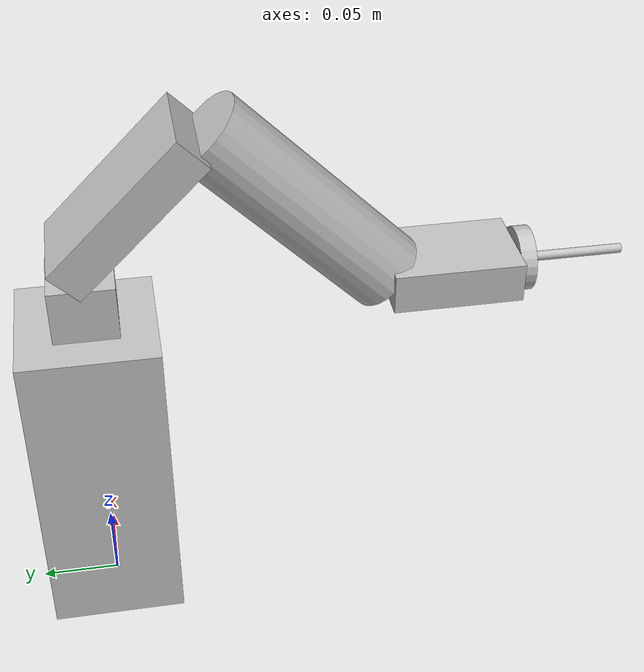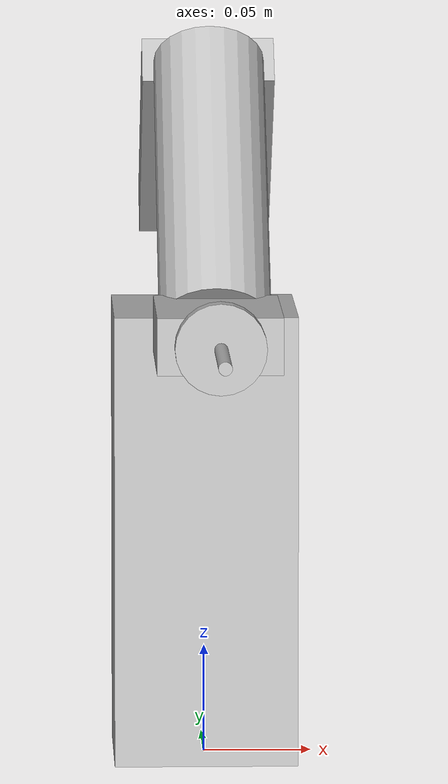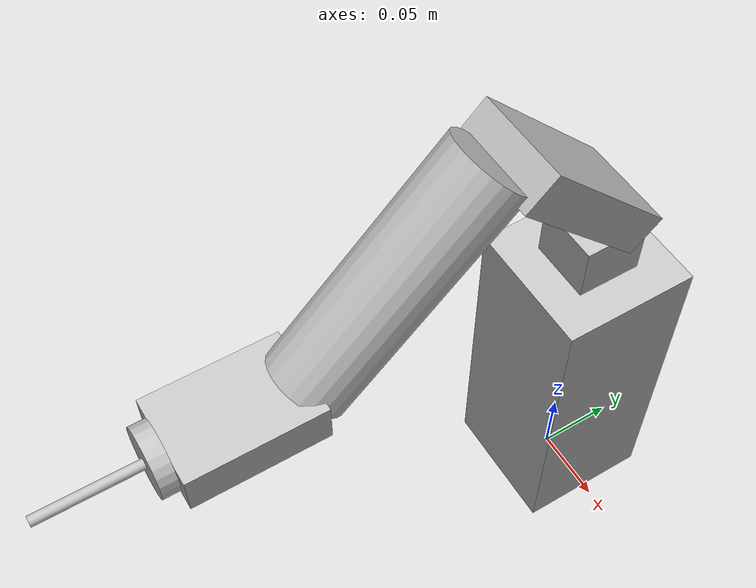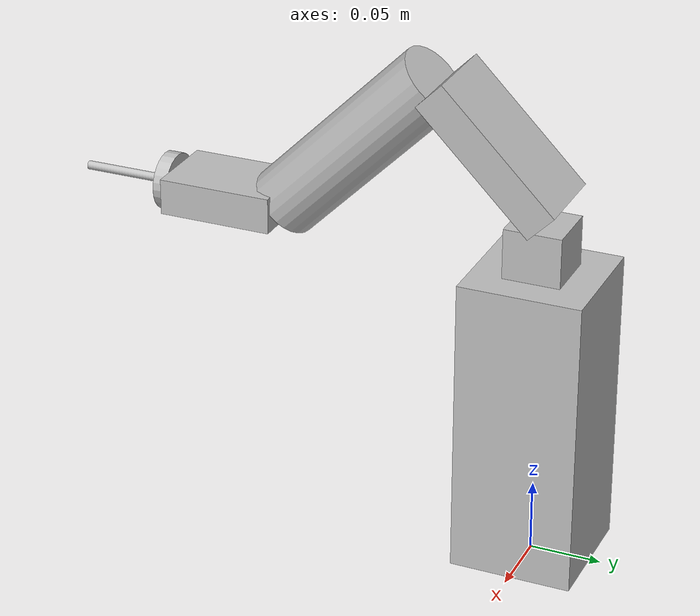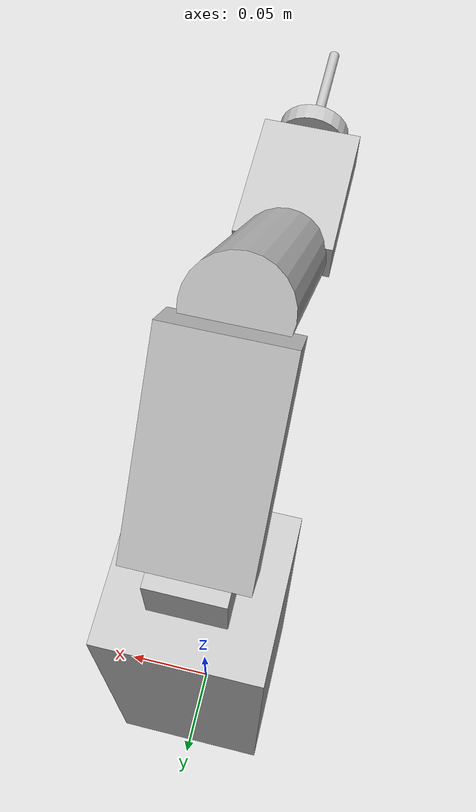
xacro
<?xml version="1.0"?>
<robot name="arm">
    <link name="world"/>
    <link name="arm_base_link">
        <visual>
            <geometry>
                <box size="0.085 0.085 0.21"/>
            </geometry>
            <material name="sliver">
                <color rgba="0.75 0.75 0.75 1"/>
            </material>
            <origin rpy="0 0 0" xyz="0 0 0.105"/>
        </visual>
    </link>
    <joint name = "fixed" type = "fixed">
        <parent link="world"/>
        <child link="arm_base_link"/>
    </joint>
    <link name = "shouder_arm">
        <visual>
            <geometry>
                <box size = "0.04 0.04 0.035"/>
            </geometry>
            <material name = "silver">
                <color rgba="0.75 0.75 0.75 1"/>
            </material>
            <origin rpy="0 0 0" xyz="0 0 0.0175"/>
        </visual>
    </link>
    <joint name = "shouder_arm_joint" type = "continuous">
        <axis xyz = "0 0 1"/>
        <parent link = "arm_base_link"/>
        <child link = "shouder_arm"/>
        <origin rpy = "0 0 0" xyz = "0 0 0.21"/>
    </joint>
    <link name = "upper_arm">
        <visual>
            <geometry>
                <box size = "0.06 0.025 0.11"/>
            </geometry>
            <material name = "sliver"/>
            <origin rpy = "0.785 0 0" xyz = "0 -0.030 0.048"/>
        </visual>
    </link>
    <joint name = "upper_arm_joint" type = "continuous">
        <axis xyz = "1 0 0"/>
        <parent link = "shouder_arm"/>
        <child link = "upper_arm"/>
        <calibration rising="0.0"/>
        <origin rpy = "0 0 0" xyz = "0 0 0.035"/>
        <limit effort="30" velocity="1.0" lower="-0.7" upper="0.7" />
    </joint>
    <link name = "middle_arm">
        <visual>
            <geometry>
                <cylinder length = "0.15" radius = "0.025"/>
            </geometry>
            <material name = "sliver"/>
            <origin rpy = "0 0 0" xyz = "0 0 0.075"/>
        </visual>
    </link>
    <joint name = "middle_arm_joint" type = "continuous">
        <axis xyz = "1 0 0"/>
        <parent link = "upper_arm"/>
        <child link = "middle_arm"/>
        <origin rpy = "2.355 0 0" xyz = "0 -0.077 0.087"/>
    </joint>
    <link name = "fore_arm">
        <visual>
            <geometry>
                <box size = "0.055 0.025 0.08"/>
            </geometry>
            <material name = "sliver"/>
            <origin rpy = "0 0 0" xyz = "0 0 0.04"/>
        </visual>
    </link>
    <joint name = "fore_arm_joint" type = "continuous">
        <axis xyz = "1 0 0"/>
        <parent link = "middle_arm"/>
        <child link = "fore_arm"/>
        <origin rpy = "-0.785 0 0" xyz = "0 0 0.15"/>
    </joint>
    <link name = "tool">
        <visual>
            <geometry>
                <cylinder length = "0.01" radius = "0.02"/>
            </geometry>
            <material name = "sliver"/>
            <origin rpy = "1.57 0 0" xyz = "0 0.005 0"/>
        </visual>
    </link>
    <joint name = "tool_joint" type = "continuous">
        <axis xyz = "0 1 0"/>
        <parent link = "fore_arm"/>
        <child link = "tool"/>
        <origin rpy = "1.57 0 0" xyz = "0 0 0.08"/>
    </joint>
    <link name = "finger_1">
        <visual>
            <geometry>
                <cylinder length = "0.06" radius = "0.003"/>
            </geometry>
            <material name = "sliver"/>
            <origin rpy =  "0 0 0" xyz = "0 0 0.04"/>
        </visual>
    </link>
    <joint name = "finger_1_joint" type = "continuous">
        <axis xyz = "0 1 0"/>
        <parent link = "tool"/>
        <child link = "finger_1"/>
        <origin rpy = "-1.57 0 0" xyz = "0 0 0"/>
    </joint>
</robot>
